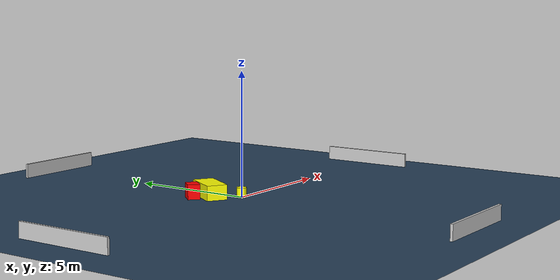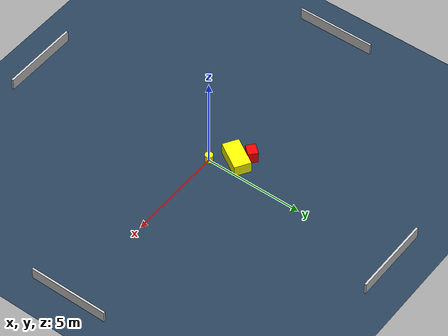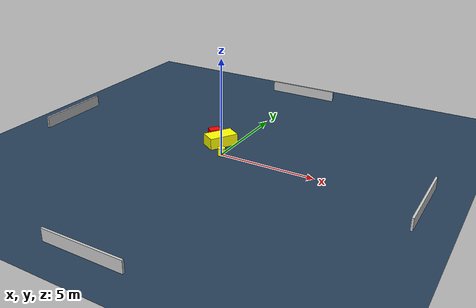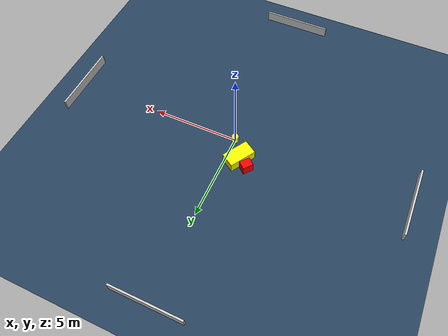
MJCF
<?xml version="1.0" ?>
<mujoco model="generated_environment">
  <option timestep="0.01" integrator="RK4" cone="elliptic"/>
  <default>
    <geom density="1"/>
  </default>
  <asset>
    <texture builtin="gradient" height="3072" name="skybox" rgb1="0.3 0.5 0.7" rgb2="0 0 0" type="skybox" width="512"/>
    <texture builtin="checker" height="300" name="groundplane" rgb1="0.2 0.3 0.4" rgb2="0.1 0.2 0.3" type="2d" width="300"/>
    <material name="groundplane" reflectance="0.2" texrepeat="5 5" texture="groundplane"/>
  </asset>
  <worldbody>
    <light dir="0 0 -1" directional="true" pos="0 0 1.5"/>
    <geom condim="3" friction="0.5 0.005 0.001" material="groundplane" name="floor" pos="0 0 0" size="0 0 0.05" type="plane"/>
    <body name="walls">
      <geom name="wall_1" condim="4" pos="-10.0 0.0 0.3" rgba="0.800000011920929 0.800000011920929 0.800000011920929 1.0" size="0.05 2.0 0.3" type="box"/>
      <geom name="wall_2" condim="4" pos="10.0 0.0 0.3" rgba="0.800000011920929 0.800000011920929 0.800000011920929 1.0" size="0.05 2.0 0.3" type="box"/>
      <geom name="wall_3" condim="4" pos="0.0 -10.0 0.3" rgba="0.800000011920929 0.800000011920929 0.800000011920929 1.0" size="2.0 0.05 0.3" type="box"/>
      <geom name="wall_4" condim="4" pos="0.0 10.0 0.3" rgba="0.800000011920929 0.800000011920929 0.800000011920929 1.0" size="2.0 0.05 0.3" type="box"/>
    </body>
    <body name="robot">
      <joint name="joint_x" type="slide" pos="0 0 0" axis="1 0 0"/>
      <joint name="joint_y" type="slide" pos="0 0 0" axis="0 1 0"/>
      <geom name="robot" type="cylinder" pos="0.0 0.0 0.2" size="0.2 0.2 0.0" mass="5.0" friction="1.0 0.005 0.0001" condim="4" rgba="1.0 1.0 0.0 1.0"/>
    </body>
    <body name="obstacle_1_movable">
      <geom name="obstacle_1_movable" condim="4" pos="-0.6819444107206378 1.0521672916673006 0.3" euler="0 0 148.26946148888993" friction="0.0 0.005 0.001" rgba="1.0 1.0 0.0 1.0" size="0.42273536349105334 0.7746899870332926 0.3" type="box" mass="0.1"/>
      <joint type="free"/>
    </body>
    <body name="obstacle_2_static">
      <geom name="obstacle_2_static" condim="4" pos="-1.2983885562924713 1.4541666092220182 0.3" euler="0 0 228.97406594724816" friction="0.0 0.005 0.001" rgba="1.0 0.0 0.0 1.0" size="0.29816395139166296 0.24258967239757115 0.3" type="box"/>
    </body>
  </worldbody>
  <actuator>
    <motor name="actuator_x" joint="joint_x" gear="1" ctrlrange="-1 1"/>
    <motor name="actuator_y" joint="joint_y" gear="1" ctrlrange="-1 1"/>
  </actuator>
</mujoco>
